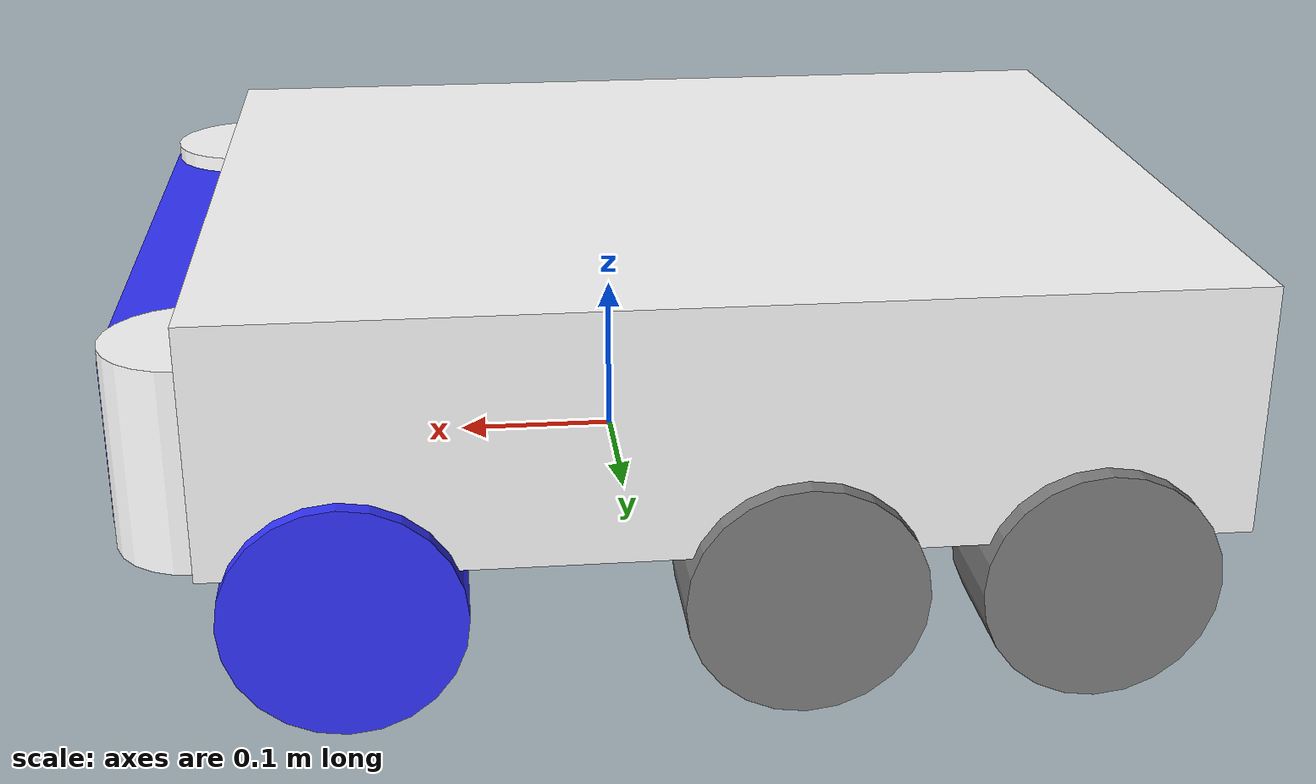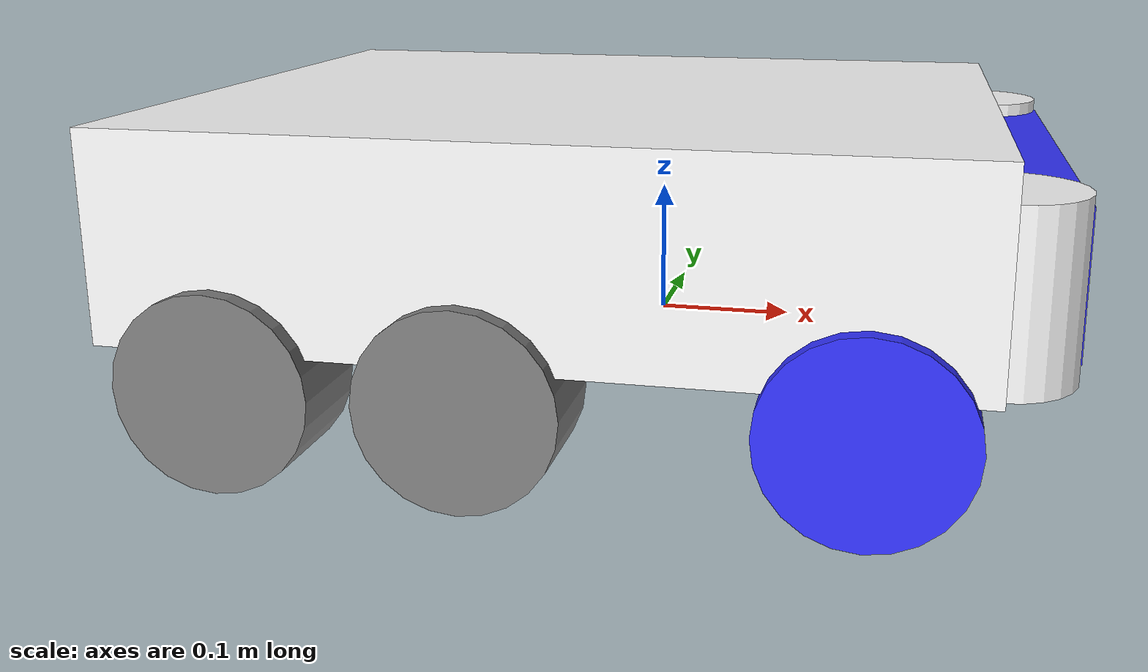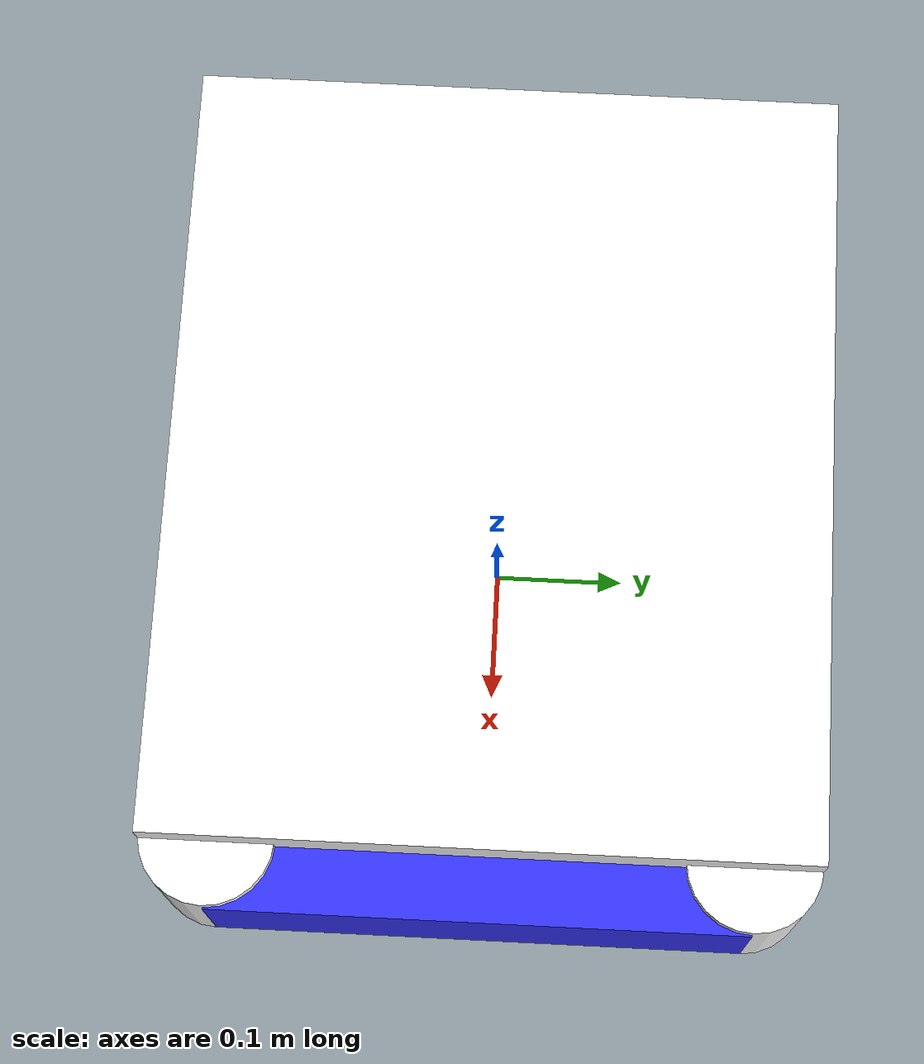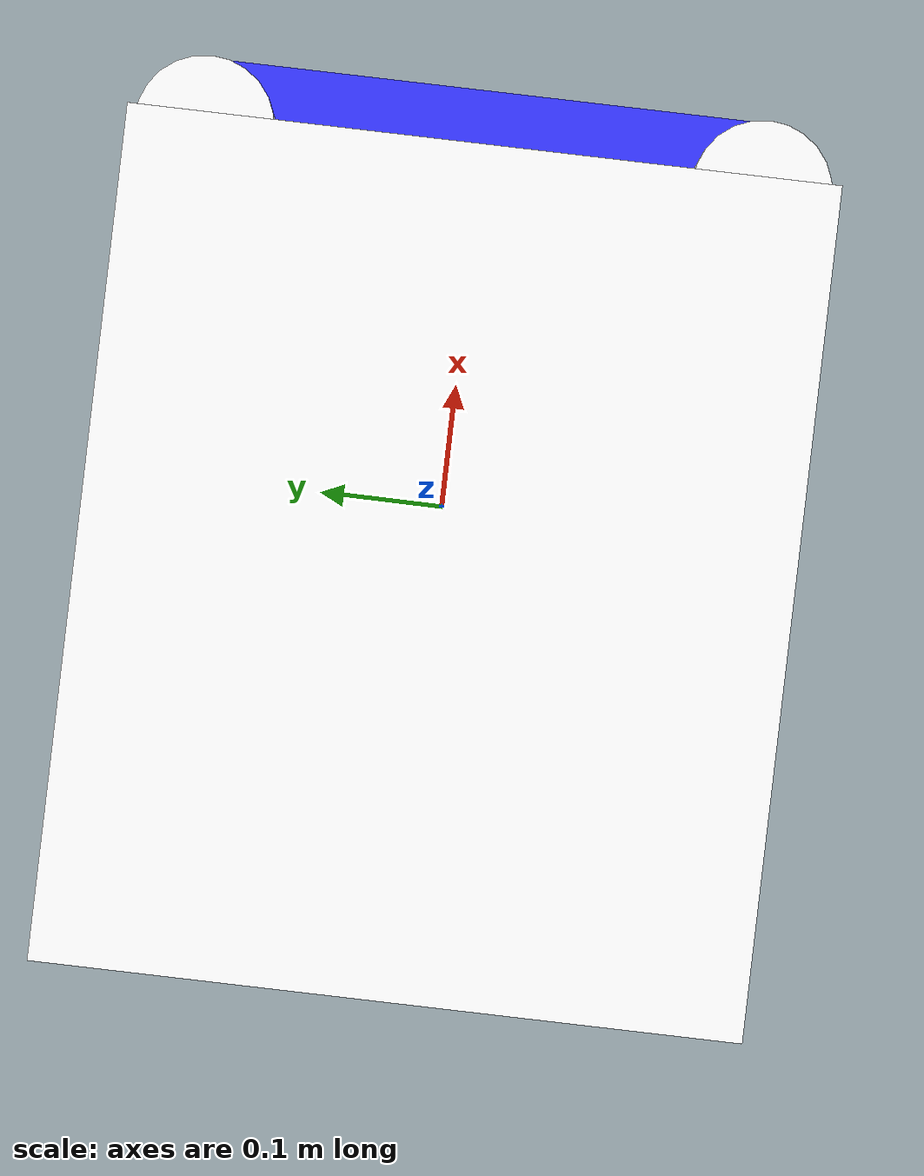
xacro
<?xml version="1.0"?>
<robot xmlns:xacro="http://www.ros.org/wiki/xacro" >

    <material name="white">
        <color rgba="1 1 1 1" />
    </material>

    <material name="orange">
        <color rgba="1 0.3 0.1 1"/>
    </material>

    <material name="blue">
        <color rgba="0.2 0.2 1 1"/>
    </material>

    <material name="black">
        <color rgba="0 0 0 1"/>
    </material>

    <material name="red">
        <color rgba="1 0 0 1"/>
    </material>

    <material name="green">
        <color rgba="0 1 0 1" />
    </material>

    <material name="gray">
        <color rgba="0.5 0.5 0.5 1" />
    </material>

    <material name="pink">
        <color rgba="1 0.4 0.7 1" />
    </material>
    <material name="cyan" >
    <color rgba="0.0 1.0 1.0 1.0" />
  </material>

    <!-- BASE LINK -->

    <link name="base_link">
    </link>

    <!-- ==================================================  BASE_FOOTPRINT joint, link ================================================== -->
    <joint name="base_footprint_joint" type="fixed">
        <parent link="base_link"/>
        <child link="base_footprint"/>
        <origin xyz="0 0 0" rpy="0 0 0"/>
    </joint>

    <link name="base_footprint">
    </link>

    <!-- ==================================================  CHASSIS joint, link ================================================== -->
    <joint name="chassis_joint" type="fixed">
        <parent link="base_link"/>
        <child link="chassis"/>
        <origin xyz="0 0 0"/>
    </joint>

    <link name="chassis">
        <visual>
            <origin xyz="-0.05 0 0.1" rpy="0 0 0"/>
            <geometry>
                <box size="0.6 0.5 0.15"/>
            </geometry>
            <material name="white"/>
        </visual>
        <collision>
            <origin xyz="0 0 0.075" rpy="0 0 0"/>
            <geometry>
                <box size="0.6 0.5 0.15"/>
            </geometry>
        </collision>
        <xacro:inertial_box mass="165.0" x="0.6" y="0.5" z="0.15">
            <origin xyz="0 0 0.075" rpy="0 0 0"/>
        </xacro:inertial_box>
    </link>
    <gazebo reference="chassis">
        <material>Gazebo/White</material>
        <mu1 value="0.5"/>
        <mu2 value="0.5"/>
    </gazebo>

    <!-- ================================================== LEFT BUMPER (Rounded Edge) ================================================== -->
    <joint name="left_bumper_joint" type="fixed">
        <parent link="chassis"/>
        <child link="left_bumper"/>
        <origin xyz="0.247 0.2 0.09" rpy="0 0 0"/>
    </joint>
    <link name="left_bumper">
        <visual>
            <geometry>
                <cylinder length="0.12" radius="0.05"/>
            </geometry>
            <material name="white"/>
        </visual>
        <collision>
            <geometry>
                <cylinder length="0.12" radius="0.05"/>
            </geometry>
        </collision>
        <xacro:inertial_cylinder mass="10.0" length="0.12" radius="0.05">
            <origin xyz="0 0 0" rpy="0 0 0"/>
        </xacro:inertial_cylinder>
    </link>
    <gazebo reference="left_bumper">
        <material>Gazebo/White</material>
        <mu1 value="0.3"/>
        <mu2 value="0.3"/>
    </gazebo>

    <!-- ================================================== RIGHT BUMPER (Rounded Edge) ================================================== -->
    <joint name="right_bumper_joint" type="fixed">
        <parent link="chassis"/>
        <child link="right_bumper"/>
        <origin xyz="0.247 -0.2 0.09" rpy="0 0 0"/>
    </joint>
    <link name="right_bumper">
        <visual>
            <geometry>
                <cylinder length="0.12" radius="0.05"/>
            </geometry>
            <material name="white"/>
        </visual>
        <collision>
            <geometry>
                <cylinder length="0.12" radius="0.05"/>
            </geometry>
        </collision>
        <xacro:inertial_cylinder mass="10.0" length="0.12" radius="0.05">
            <origin xyz="0 0 0" rpy="0 0 0"/>
        </xacro:inertial_cylinder>
    </link>
    <gazebo reference="right_bumper">
        <material>Gazebo/White</material>
        <mu1 value="0.3"/>
        <mu2 value="0.3"/>
    </gazebo>

    <!-- ==================================================  FRONT BUMPER joint, link ================================================== -->
    <joint name="front_bumper_joint" type="fixed">
        <parent link="base_link"/>
        <child link="front_bumper"/>
        <origin xyz="0 0 0"/>
    </joint>

    <link name="front_bumper">
        <visual>
            <origin xyz="0.273 0 0.09" rpy="0 0 0"/>
            <geometry>
                <box size="0.05 0.4 0.1"/>
            </geometry>
            <material name="blue"/>
        </visual>
        <collision>
            <origin xyz="0 0 0.05" rpy="0 0 0"/>
            <geometry>
                <box size="0.05 0.4 0.1"/>
            </geometry>
        </collision>
        <xacro:inertial_box mass="10.0" x="0.05" y="0.4" z="0.1">
            <origin xyz="0 0 0.05" rpy="0 0 0"/>
        </xacro:inertial_box>
    </link>
    <gazebo reference="front_bumper">
        <material>Gazebo/Blue</material>
        <mu1 value="0.3"/>
        <mu2 value="0.3"/>
    </gazebo>

    <!-- ==================================================  FRONT LEFT WHEEL joint, link ================================================== -->
    <joint name="front_left_wheel_joint" type="continuous">
        <parent link="base_link"/>
        <child link="front_left_wheel"/>
        <origin xyz="0.17 0.225 0" rpy="-${pi/2} 0 0"/>
        <axis xyz="0 0 1"/>
    </joint>

    <link name="front_left_wheel">
        <visual>
            <geometry>
                <cylinder length="0.07" radius="0.07" />
            </geometry>
            <material name="blue"/>
        </visual>
        <collision>
            <geometry>
                <cylinder length="0.075" radius="0.05" />
            </geometry>
        </collision>
        <xacro:inertial_cylinder mass="20.0" length="0.075" radius="0.07">
            <origin xyz="0 0 0" rpy="0 0 0"/>
        </xacro:inertial_cylinder>
    </link>
    <gazebo reference="front_left_wheel">
        <material>Gazebo/Blue</material>
        <mu1 value="0.8"/>
        <mu2 value="0.8"/>
    </gazebo>

    <!-- ==================================================  FRONT RIGHT WHEEL joint, link ================================================== -->
    <joint name="front_right_wheel_joint" type="continuous">
        <parent link="base_link"/>
        <child link="front_right_wheel"/>
        <origin xyz="0.17 -0.225 0" rpy="${pi/2} 0 0"/>
        <axis xyz="0 0 -1"/>
    </joint>

    <link name="front_right_wheel">
        <visual>
            <geometry>
                <cylinder length="0.075" radius="0.07" />
            </geometry>
            <material name="blue"/>
        </visual>
        <collision>
            <geometry>
                <cylinder length="0.07" radius="0.07" />
            </geometry>
        </collision>
        <xacro:inertial_cylinder mass="20.0" length="0.075" radius="0.07">
            <origin xyz="0 0 0" rpy="0 0 0"/>
        </xacro:inertial_cylinder>
    </link>
    <gazebo reference="front_right_wheel">
        <material>Gazebo/Blue</material>
        <mu1 value="0.8"/>
        <mu2 value="0.8"/>
    </gazebo>

    <!-- ==================================================  BACK LEFT WHEEL joint, link ================================================== -->
    <joint name="back_left_wheel_joint" type="continuous">
        <parent link="base_link"/>
        <child link="back_left_wheel"/>
        <origin xyz="-0.09 0.225 0" rpy="-${pi/2} 0 0"/>
        <axis xyz="0 0 1"/>
    </joint>

    <link name="back_left_wheel">
        <visual>
            <geometry>
                <cylinder length="0.075" radius="0.07" />
            </geometry>
            <material name="gray"/>
        </visual>
        <collision>
            <geometry>
                <cylinder length="0.075" radius="0.07" />
            </geometry>
        </collision>
        <xacro:inertial_cylinder mass="20.0" length="0.075" radius="0.07">
            <origin xyz="0 0 0" rpy="0 0 0"/>
        </xacro:inertial_cylinder>
    </link>
    <gazebo reference="back_left_wheel">
        <material>Gazebo/Gray</material>
        <mu1 value="0.5"/>
        <mu2 value="0.5"/>
    </gazebo>

    <!-- ================================================== BACK RIGHT WHEEL joint, link ================================================== -->
    <joint name="back_right_wheel_joint" type="continuous">
        <parent link="base_link"/>
        <child link="back_right_wheel"/>
        <origin xyz="-0.09 -0.225 0" rpy="${pi/2} 0 0"/>
        <axis xyz="0 0 -1"/>
    </joint>

    <link name="back_right_wheel">
        <visual>
            <geometry>
                <cylinder length="0.075" radius="0.07" />
            </geometry>
            <material name="gray"/>
        </visual>
        <collision>
            <geometry>
                <cylinder length="0.075" radius="0.07" />
            </geometry>
        </collision>
        <xacro:inertial_cylinder mass="20.0" length="0.075" radius="0.07">
            <origin xyz="0 0 0" rpy="0 0 0"/>
        </xacro:inertial_cylinder>
    </link>
    <gazebo reference="back_right_wheel">
        <material>Gazebo/Gray</material>
        <mu1 value="0.5"/>
        <mu2 value="0.5"/>
    </gazebo>

    <!-- ================================================== REAR BACK LEFT WHEEL joint, link ================================================== -->
    <joint name="rear_back_left_wheel_joint" type="continuous">
        <parent link="base_link"/>
        <child link="rear_back_left_wheel"/>
        <origin xyz="-0.26 0.225 0" rpy="-${pi/2} 0 0"/>
        <axis xyz="0 0 1"/>
    </joint>

    <link name="rear_back_left_wheel">
        <visual>
            <geometry>
                <cylinder length="0.075" radius="0.07" />
            </geometry>
            <material name="gray"/>
        </visual>
        <collision>
            <geometry>
                <cylinder length="0.075" radius="0.07" />
            </geometry>
        </collision>
        <xacro:inertial_cylinder mass="20.0" length="0.07" radius="0.07">
            <origin xyz="0 0 0" rpy="0 0 0"/>
        </xacro:inertial_cylinder>
    </link>
    <gazebo reference="rear_back_left_wheel">
        <material>Gazebo/Gray</material>
        <mu1 value="0.5"/>
        <mu2 value="0.5"/>
    </gazebo>

    <!-- ================================================== REAR BACK RIGHT WHEEL joint, link ================================================== -->
    <joint name="rear_back_right_wheel_joint" type="continuous">
        <parent link="base_link"/>
        <child link="rear_back_right_wheel"/>
        <origin xyz="-0.26 -0.225 0" rpy="${pi/2} 0 0"/>
        <axis xyz="0 0 -1"/>
    </joint>

    <link name="rear_back_right_wheel">
        <visual>
            <geometry>
                <cylinder length="0.075" radius="0.07" />
            </geometry>
            <material name="gray"/>
        </visual>
        <collision>
            <geometry>
                <cylinder length="0.075" radius="0.07" />
            </geometry>
        </collision>
        <xacro:inertial_cylinder mass="20.0" length="0.075" radius="0.07">
            <origin xyz="0 0 0" rpy="0 0 0"/>
        </xacro:inertial_cylinder>
    </link>
    <gazebo reference="rear_back_right_wheel">
        <material>Gazebo/Gray</material>
        <mu1 value="0.5"/>
        <mu2 value="0.5"/>
    </gazebo>

</robot>
